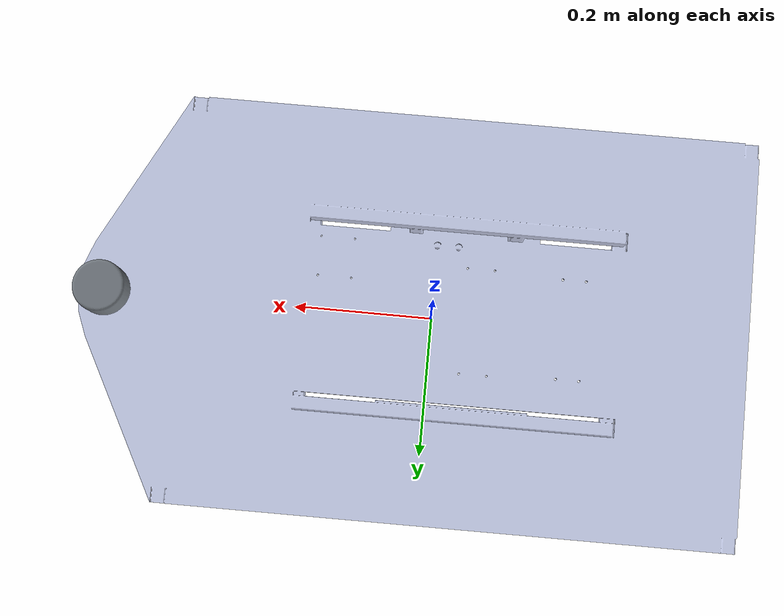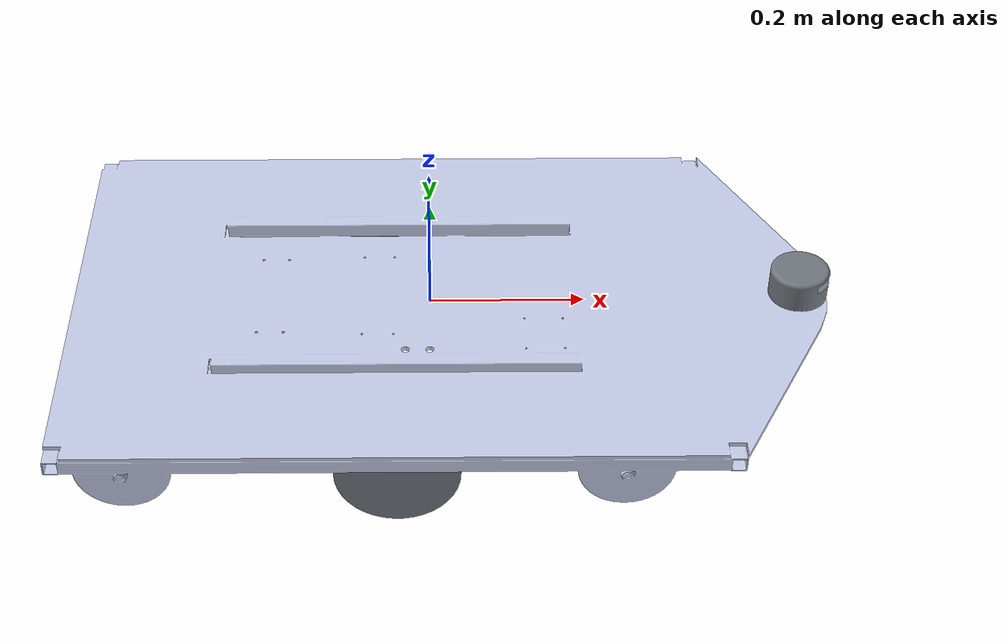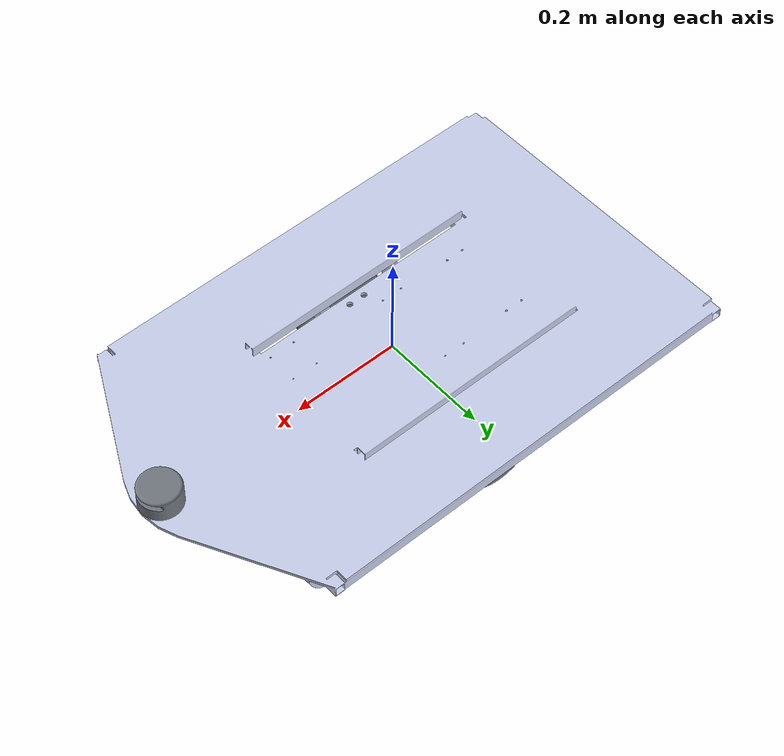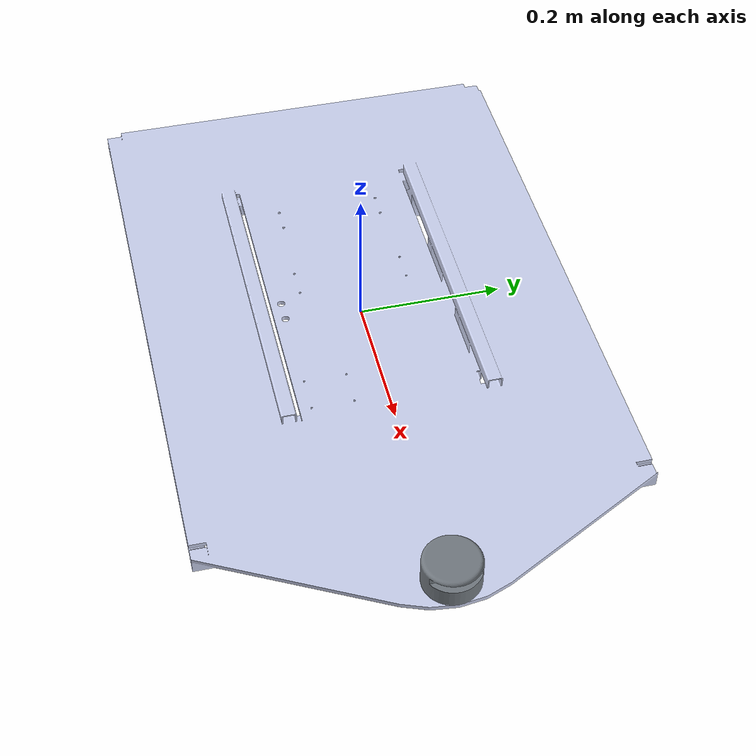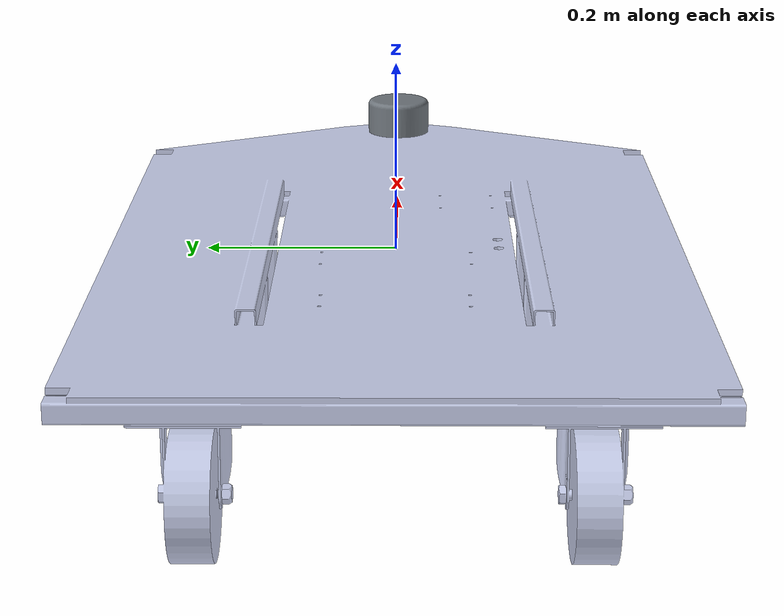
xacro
<?xml version="1.0" encoding="utf-8"?>
<robot name="factomove" xmlns:xacro="http://www.ros.org/wiki/xacro">
  <link name="base_footprint"/>

  <joint name="base_joint" type="fixed">
    <parent link="base_footprint"/>
    <child link="base_link" />
    <origin xyz="0 0 0.010" rpy="0 0 0"/>
  </joint>
  <link
    name="base_link">
    <visual>
      <origin
        xyz="0 0 0"
        rpy="0 0 0" />
      <geometry>
        <mesh
          filename="package://factomove_description/meshes/base_link.STL" />
      </geometry>
      <material
        name="">
        <color
          rgba="0.79216 0.81961 0.93333 1" />
      </material>
    </visual>
    <collision>
      <origin
        xyz="0 0 0"
        rpy="0 0 0" />
      <geometry>
        <mesh
          filename="package://factomove_description/meshes/base_link.STL" />
      </geometry>
    </collision>
  </link>
  <link
    name="right_wheel">
    <visual>
      <origin
        xyz="0 0 0"
        rpy="0 0 0" />
      <geometry>
        <mesh
          filename="package://factomove_description/meshes/right_wheel_link.STL" />
      </geometry>
      <material
        name="">
        <color
          rgba="0.44706 0.47451 0.50196 1" />
      </material>
    </visual>
    <collision>
      <origin
        xyz="0 0 0"
        rpy="0 0 0" />
      <geometry>
        <mesh
          filename="package://factomove_description/meshes/right_wheel_link.STL" />
      </geometry>
    </collision>
  </link>
  <joint
    name="right_wheel"
    type="continuous">
    <origin
      xyz="-0.041648 -0.19304 -0.103"
      rpy="-1.5708 0 0" />
    <parent
      link="base_link" />
    <child
      link="right_wheel" />
    <axis
      xyz="0 0 1" />
  </joint>
  <link
    name="left_wheel">
    <visual>
      <origin
        xyz="0 0 0"
        rpy="0 0 0" />
      <geometry>
        <mesh
          filename="package://factomove_description/meshes/left_wheel_link.STL" />
      </geometry>
      <material
        name="">
        <color
          rgba="0.44706 0.47451 0.50196 1" />
      </material>
    </visual>
    <collision>
      <origin
        xyz="0 0 0"
        rpy="0 0 0" />
      <geometry>
        <mesh
          filename="package://factomove_description/meshes/left_wheel_link.STL" />
      </geometry>
    </collision>
  </link>
  <joint
    name="left_wheel"
    type="continuous">
    <origin
      xyz="-0.041648 0.19296 -0.103"
      rpy="-1.5708 0 0" />
    <parent
      link="base_link" />
    <child
      link="left_wheel" />
    <axis
      xyz="0 0 -1" />
  </joint>
    <joint
    name="scan_joint"
    type="fixed">
    <origin
      xyz="0.47473 -4.3283E-05 0.016542"
      rpy="0 0 0" />
    <parent
      link="base_link" />
    <child
      link="base_scan" />
    <axis
      xyz="0 0 0" />
  </joint>
  <link
    name="base_scan">
    <visual>
      <origin
        xyz="0 0 0"
        rpy="0 0 0" />
      <geometry>
        <mesh
          filename="package://factomove_description/meshes/base_scan.STL" />
      </geometry>
      <material
        name="">
        <color
          rgba="0.44706 0.47451 0.50196 1" />
      </material>
    </visual>
    <collision>
      <origin
        xyz="0 0 0"
        rpy="0 0 0" />
      <geometry>
        <mesh
          filename="package://factomove_description/meshes/base_scan.STL" />
      </geometry>
    </collision>
  </link>

</robot>
